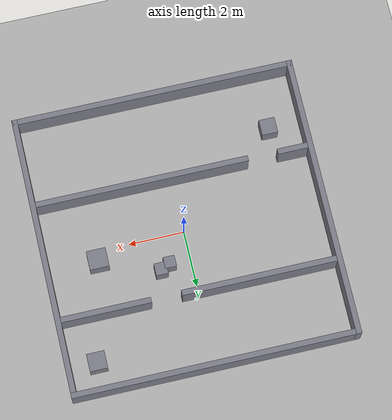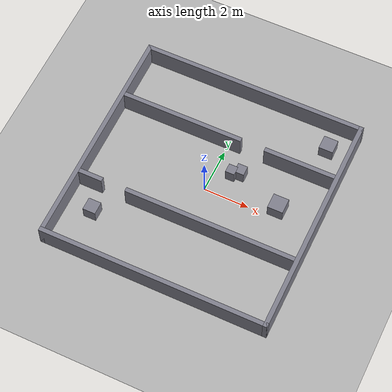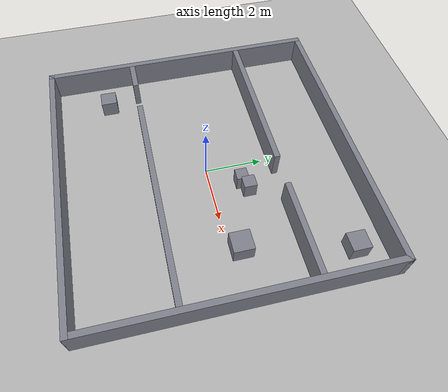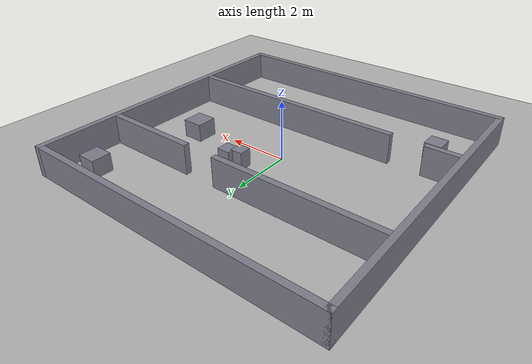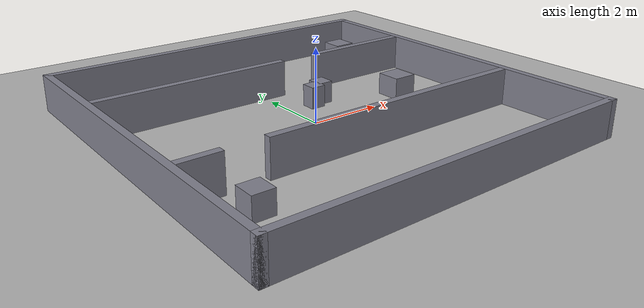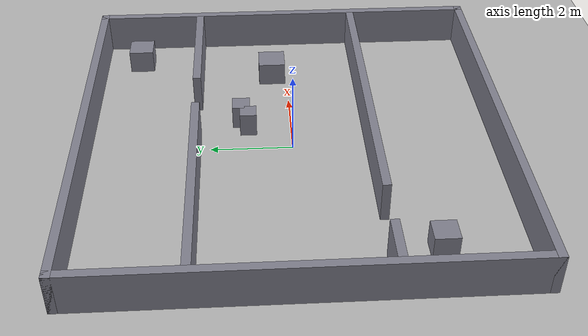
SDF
<?xml version="1.0"?>
<sdf version="1.10">
  <world name="scenario_13">
    <physics name="fast" type="ignored">
      <max_step_size>0.005</max_step_size>
      <real_time_factor>1.0</real_time_factor>
      <real_time_update_rate>200</real_time_update_rate>
    </physics>
    <plugin filename="gz-sim-physics-system" name="gz::sim::systems::Physics"/>
    <plugin filename="gz-sim-user-commands-system" name="gz::sim::systems::UserCommands"/>
    <plugin filename="gz-sim-scene-broadcaster-system" name="gz::sim::systems::SceneBroadcaster"/>
    <plugin filename="gz-sim-sensors-system" name="gz::sim::systems::Sensors">
      <render_engine>ogre2</render_engine>
    </plugin>
    <light type="directional" name="sun">
      <cast_shadows>false</cast_shadows>
      <pose>0 0 10 0 0 0</pose>
      <diffuse>0.9 0.9 0.9 1</diffuse>
      <direction>-0.5 0.2 -0.9</direction>
    </light>
    <model name="ground_plane">
      <static>true</static>
      <link name="link">
        <collision name="c"><geometry><plane><normal>0 0 1</normal><size>20 20</size></plane></geometry></collision>
        <visual name="v"><geometry><plane><normal>0 0 1</normal><size>20 20</size></plane></geometry>
          <material><ambient>0.7 0.7 0.7 1</ambient><diffuse>0.7 0.7 0.7 1</diffuse></material></visual>
      </link>
    </model>
    <model name="box_0">
      <static>true</static>
      <pose>0.0 5.0 0.5 0 0 0</pose>
      <link name="link">
        <collision name="c"><geometry><box><size>10.2 0.2 1.0</size></box></geometry></collision>
        <visual name="v"><geometry><box><size>10.2 0.2 1.0</size></box></geometry>
          <material><ambient>0.5 0.5 0.55 1</ambient><diffuse>0.5 0.5 0.55 1</diffuse></material></visual>
      </link>
    </model>
    <model name="box_1">
      <static>true</static>
      <pose>0.0 -5.0 0.5 0 0 0</pose>
      <link name="link">
        <collision name="c"><geometry><box><size>10.2 0.2 1.0</size></box></geometry></collision>
        <visual name="v"><geometry><box><size>10.2 0.2 1.0</size></box></geometry>
          <material><ambient>0.5 0.5 0.55 1</ambient><diffuse>0.5 0.5 0.55 1</diffuse></material></visual>
      </link>
    </model>
    <model name="box_2">
      <static>true</static>
      <pose>5.0 0.0 0.5 0 0 0</pose>
      <link name="link">
        <collision name="c"><geometry><box><size>0.2 10.2 1.0</size></box></geometry></collision>
        <visual name="v"><geometry><box><size>0.2 10.2 1.0</size></box></geometry>
          <material><ambient>0.5 0.5 0.55 1</ambient><diffuse>0.5 0.5 0.55 1</diffuse></material></visual>
      </link>
    </model>
    <model name="box_3">
      <static>true</static>
      <pose>-5.0 0.0 0.5 0 0 0</pose>
      <link name="link">
        <collision name="c"><geometry><box><size>0.2 10.2 1.0</size></box></geometry></collision>
        <visual name="v"><geometry><box><size>0.2 10.2 1.0</size></box></geometry>
          <material><ambient>0.5 0.5 0.55 1</ambient><diffuse>0.5 0.5 0.55 1</diffuse></material></visual>
      </link>
    </model>
    <model name="box_4">
      <static>true</static>
      <pose>-2.139322841758029 2.34 0.5 0 0 0</pose>
      <link name="link">
        <collision name="c"><geometry><box><size>5.521354316483943 0.2 1.0</size></box></geometry></collision>
        <visual name="v"><geometry><box><size>5.521354316483943 0.2 1.0</size></box></geometry>
          <material><ambient>0.5 0.5 0.55 1</ambient><diffuse>0.5 0.5 0.55 1</diffuse></material></visual>
      </link>
    </model>
    <model name="box_5">
      <static>true</static>
      <pose>3.3006771582419714 2.34 0.5 0 0 0</pose>
      <link name="link">
        <collision name="c"><geometry><box><size>3.198645683516058 0.2 1.0</size></box></geometry></collision>
        <visual name="v"><geometry><box><size>3.198645683516058 0.2 1.0</size></box></geometry>
          <material><ambient>0.5 0.5 0.55 1</ambient><diffuse>0.5 0.5 0.55 1</diffuse></material></visual>
      </link>
    </model>
    <model name="box_6">
      <static>true</static>
      <pose>-4.359441357779337 -1.88 0.5 0 0 0</pose>
      <link name="link">
        <collision name="c"><geometry><box><size>1.0811172844413273 0.2 1.0</size></box></geometry></collision>
        <visual name="v"><geometry><box><size>1.0811172844413273 0.2 1.0</size></box></geometry>
          <material><ambient>0.5 0.5 0.55 1</ambient><diffuse>0.5 0.5 0.55 1</diffuse></material></visual>
      </link>
    </model>
    <model name="box_7">
      <static>true</static>
      <pose>1.0805586422206637 -1.88 0.5 0 0 0</pose>
      <link name="link">
        <collision name="c"><geometry><box><size>7.638882715558673 0.2 1.0</size></box></geometry></collision>
        <visual name="v"><geometry><box><size>7.638882715558673 0.2 1.0</size></box></geometry>
          <material><ambient>0.5 0.5 0.55 1</ambient><diffuse>0.5 0.5 0.55 1</diffuse></material></visual>
      </link>
    </model>
    <model name="box_8">
      <static>true</static>
      <pose>-3.76 -2.99 0.3 0 0 0</pose>
      <link name="link">
        <collision name="c"><geometry><box><size>0.57 0.57 0.6</size></box></geometry></collision>
        <visual name="v"><geometry><box><size>0.57 0.57 0.6</size></box></geometry>
          <material><ambient>0.5 0.5 0.55 1</ambient><diffuse>0.5 0.5 0.55 1</diffuse></material></visual>
      </link>
    </model>
    <model name="box_9">
      <static>true</static>
      <pose>3.98 3.94 0.3 0 0 0</pose>
      <link name="link">
        <collision name="c"><geometry><box><size>0.63 0.63 0.6</size></box></geometry></collision>
        <visual name="v"><geometry><box><size>0.63 0.63 0.6</size></box></geometry>
          <material><ambient>0.5 0.5 0.55 1</ambient><diffuse>0.5 0.5 0.55 1</diffuse></material></visual>
      </link>
    </model>
    <model name="box_10">
      <static>true</static>
      <pose>3.19 0.4 0.3 0 0 0</pose>
      <link name="link">
        <collision name="c"><geometry><box><size>0.69 0.69 0.6</size></box></geometry></collision>
        <visual name="v"><geometry><box><size>0.69 0.69 0.6</size></box></geometry>
          <material><ambient>0.5 0.5 0.55 1</ambient><diffuse>0.5 0.5 0.55 1</diffuse></material></visual>
      </link>
    </model>
    <model name="box_11">
      <static>true</static>
      <pose>1.11 1.24 0.3 0 0 0</pose>
      <link name="link">
        <collision name="c"><geometry><box><size>0.44 0.44 0.6</size></box></geometry></collision>
        <visual name="v"><geometry><box><size>0.44 0.44 0.6</size></box></geometry>
          <material><ambient>0.5 0.5 0.55 1</ambient><diffuse>0.5 0.5 0.55 1</diffuse></material></visual>
      </link>
    </model>
    <model name="box_12">
      <static>true</static>
      <pose>0.76 1.07 0.3 0 0 0</pose>
      <link name="link">
        <collision name="c"><geometry><box><size>0.41 0.41 0.6</size></box></geometry></collision>
        <visual name="v"><geometry><box><size>0.41 0.41 0.6</size></box></geometry>
          <material><ambient>0.5 0.5 0.55 1</ambient><diffuse>0.5 0.5 0.55 1</diffuse></material></visual>
      </link>
    </model>
  </world>
</sdf>
